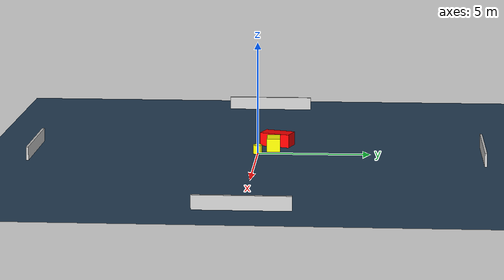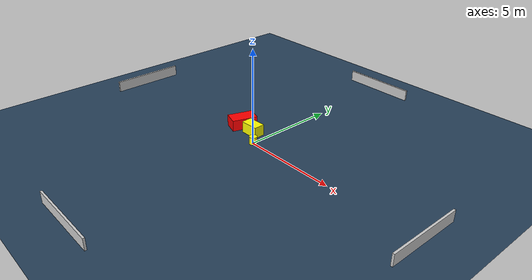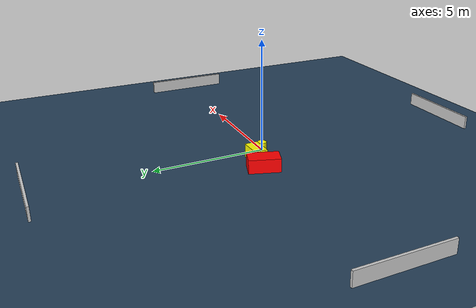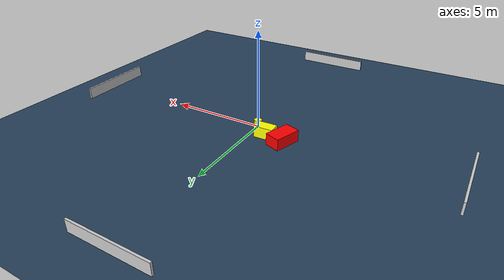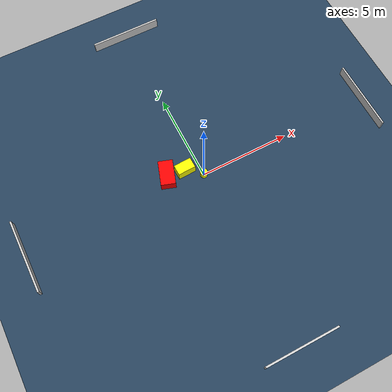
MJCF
<?xml version="1.0" ?>
<mujoco model="generated_environment">
  <option timestep="0.01" integrator="RK4" cone="elliptic"/>
  <default>
    <geom density="1"/>
  </default>
  <asset>
    <texture builtin="gradient" height="3072" name="skybox" rgb1="0.3 0.5 0.7" rgb2="0 0 0" type="skybox" width="512"/>
    <texture builtin="checker" height="300" name="groundplane" rgb1="0.2 0.3 0.4" rgb2="0.1 0.2 0.3" type="2d" width="300"/>
    <material name="groundplane" reflectance="0.2" texrepeat="5 5" texture="groundplane"/>
  </asset>
  <worldbody>
    <light dir="0 0 -1" directional="true" pos="0 0 1.5"/>
    <geom condim="3" friction="0.5 0.005 0.001" material="groundplane" name="floor" pos="0 0 0" size="0 0 0.05" type="plane"/>
    <body name="walls">
      <geom name="wall_1" condim="4" pos="-10.0 0.0 0.3" rgba="0.800000011920929 0.800000011920929 0.800000011920929 1.0" size="0.05 2.0 0.3" type="box"/>
      <geom name="wall_2" condim="4" pos="10.0 0.0 0.3" rgba="0.800000011920929 0.800000011920929 0.800000011920929 1.0" size="0.05 2.0 0.3" type="box"/>
      <geom name="wall_3" condim="4" pos="0.0 -10.0 0.3" rgba="0.800000011920929 0.800000011920929 0.800000011920929 1.0" size="2.0 0.05 0.3" type="box"/>
      <geom name="wall_4" condim="4" pos="0.0 10.0 0.3" rgba="0.800000011920929 0.800000011920929 0.800000011920929 1.0" size="2.0 0.05 0.3" type="box"/>
    </body>
    <body name="robot">
      <joint name="joint_x" type="slide" pos="0 0 0" axis="1 0 0"/>
      <joint name="joint_y" type="slide" pos="0 0 0" axis="0 1 0"/>
      <geom name="robot" type="cylinder" pos="0.0 0.0 0.2" size="0.2 0.2 0.0" mass="5.0" friction="1.0 0.005 0.0001" condim="4" rgba="1.0 1.0 0.0 1.0"/>
    </body>
    <body name="obstacle_1_movable">
      <geom name="obstacle_1_movable" condim="4" pos="-0.7928580125690987 0.6679868409219696 0.3" euler="0 0 181.75699572907706" friction="0.0 0.005 0.001" rgba="1.0 1.0 0.0 1.0" size="0.4896245771860152 0.2919835787552707 0.3" type="box" mass="0.1"/>
      <joint type="free"/>
    </body>
    <body name="obstacle_2_static">
      <geom name="obstacle_2_static" condim="4" pos="-1.782357738695245 0.7892484563248859 0.3" euler="0 0 71.62011248866891" friction="0.0 0.005 0.001" rgba="1.0 0.0 0.0 1.0" size="0.6849885183357414 0.3977248484502489 0.3" type="box"/>
    </body>
  </worldbody>
  <actuator>
    <motor name="actuator_x" joint="joint_x" gear="1" ctrlrange="-1 1"/>
    <motor name="actuator_y" joint="joint_y" gear="1" ctrlrange="-1 1"/>
  </actuator>
</mujoco>
